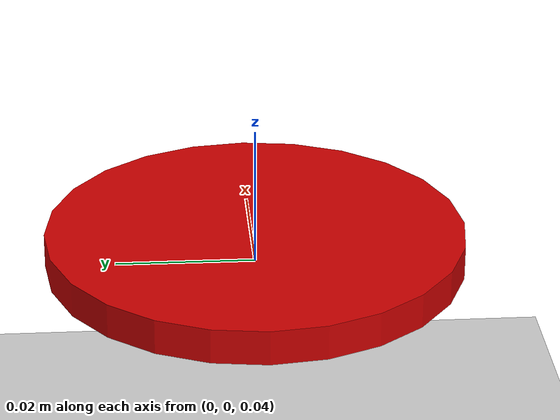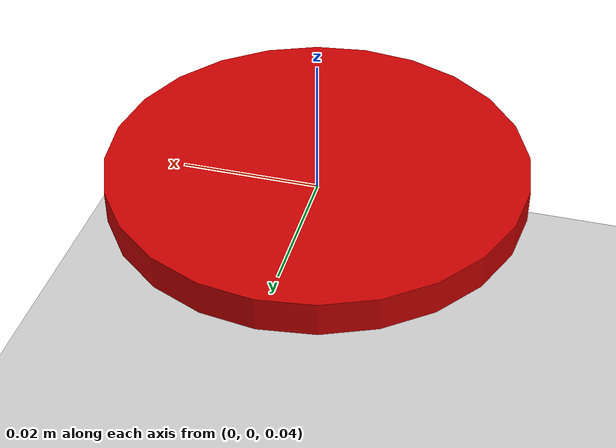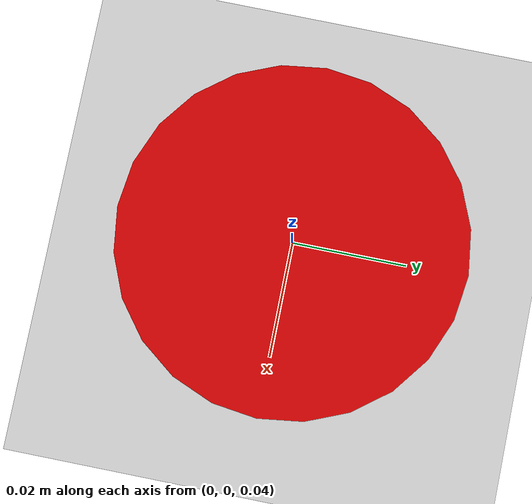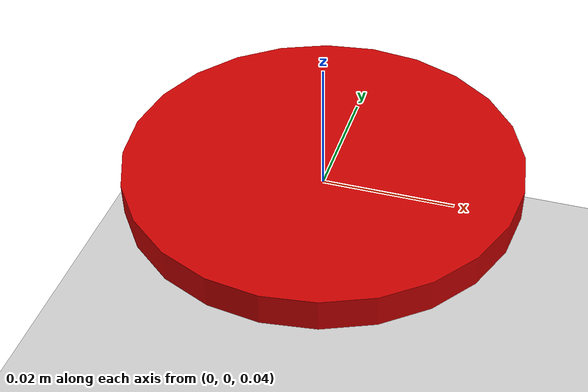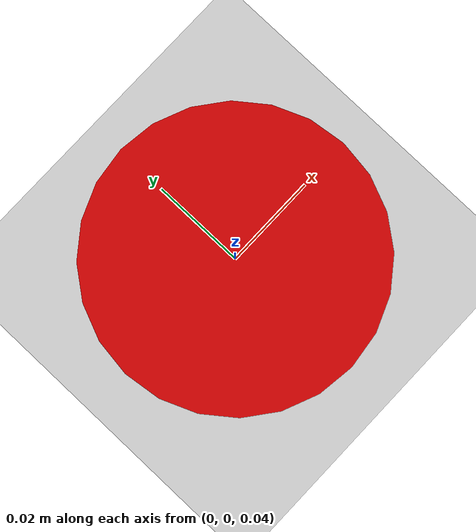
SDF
<?xml version="1.0" ?>
<sdf version="1.9">
  <world name="default">

    <plugin filename="gz-sim-physics-system" name="gz::sim::systems::Physics"></plugin>
    <plugin filename="gz-sim-scene-broadcaster-system" name="gz::sim::systems::SceneBroadcaster"></plugin>
    <plugin filename="gz-sim-user-commands-system" name="gz::sim::systems::UserCommands"></plugin>
    <plugin filename="gz-sim-sensors-system" name="gz::sim::systems::Sensors">
      <render_engine>ogre2</render_engine>
    </plugin>

    <plugin filename="gz-sim-detachable-joint-system" name="gz::sim::systems::DetachableJoint"></plugin>

    <light type="directional" name="sun">
      <cast_shadows>true</cast_shadows>
      <pose>0 0 10 0 0 0</pose>
      <diffuse>0.8 0.8 0.8 1</diffuse>
      <specular>0.2 0.2 0.2 1</specular>
      <direction>-0.5 0.1 -0.9</direction>
    </light>

    <model name="ground_plane">
      <static>true</static>
      <link name="link">
        <collision name="collision">
          <geometry><plane><normal>0 0 1</normal><size>100 100</size></plane></geometry>
        </collision>
        <visual name="visual">
          <geometry><plane><normal>0 0 1</normal><size>100 100</size></plane></geometry>
          <material>
            <ambient>0.8 0.8 0.8 1</ambient>
            <diffuse>0.8 0.8 0.8 1</diffuse>
          </material>
        </visual>
      </link>
    </model>

    <include>
      <uri>model://x_marker</uri>
      <name>x_marker_2</name>
      <pose>11 10 0 0 0 0</pose>
    </include>

    <include>
      <uri>model://payload_cylinder</uri>
      <name>payload_cylinder</name>
      <pose>0 0 0.0425 0 0 0</pose>
    </include>

  </world>
</sdf>

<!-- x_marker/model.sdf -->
<sdf version="1.9">
  <model name="x_marker">
    <static>true</static>
    <link name="link">
      <pose>0 0 0.001 0 0 0</pose>

      <collision name="collision">
        <geometry>
          <box>
            <size>1.5 1.5 0.002</size>
          </box>
        </geometry>
      </collision>

      <!-- Single PBR-textured plane using x_marker.png (ogre2 compatible) -->
      <visual name="marker">
        <pose>0 0 0 0 0 0</pose>
        <geometry>
          <box>
            <size>1.5 1.5 0.001</size>
          </box>
        </geometry>
        <material>
          <diffuse>1 1 1 1</diffuse>
          <specular>0 0 0 1</specular>
          <pbr>
            <metal>
              <albedo_map>model://x_marker/materials/textures/x_marker.png</albedo_map>
              <metalness>0.0</metalness>
              <roughness>0.8</roughness>
            </metal>
          </pbr>
        </material>
      </visual>

    </link>
  </model>
</sdf>

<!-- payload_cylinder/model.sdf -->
<sdf version="1.9">
  <model name="payload_cylinder">

    <link name="payload_link">
      <self_collide>true</self_collide>
      <inertial>
        <mass>0.1</mass>
        <inertia>
          <ixx>0.0001</ixx><ixy>0</ixy><ixz>0</ixz>
          <iyy>0.0001</iyy><iyz>0</iyz>
          <izz>0.0001</izz>
        </inertia>
      </inertial>

      <visual name="payload_visual">
        <geometry>
           <cylinder><radius>0.03</radius><length>0.005</length></cylinder>
        </geometry>
        <material>
          <ambient>0.8 0.0 0.0 1</ambient>
          <diffuse>0.8 0.0 0.0 1</diffuse>
        </material>
      </visual>

      <collision name="payload_collision">
        <geometry>
           <cylinder><radius>0.029</radius><length>0.005</length></cylinder>
        </geometry>
        <surface>
          <contact>
            <ode>
              <kp>100000.0</kp>
              <kd>100.0</kd>
              <max_vel>0.0</max_vel>
              <min_depth>0.002</min_depth>
            </ode>
          </contact>
        </surface>
      </collision>
    </link>

    <plugin name="gz::sim::systems::OdometryPublisher"
            filename="gz-sim-odometry-publisher-system">
      <odom_frame>world</odom_frame>
      <robot_base_frame>payload_cylinder</robot_base_frame>
      <odom_publish_frequency>10</odom_publish_frequency>
    </plugin>
  </model>
</sdf>
